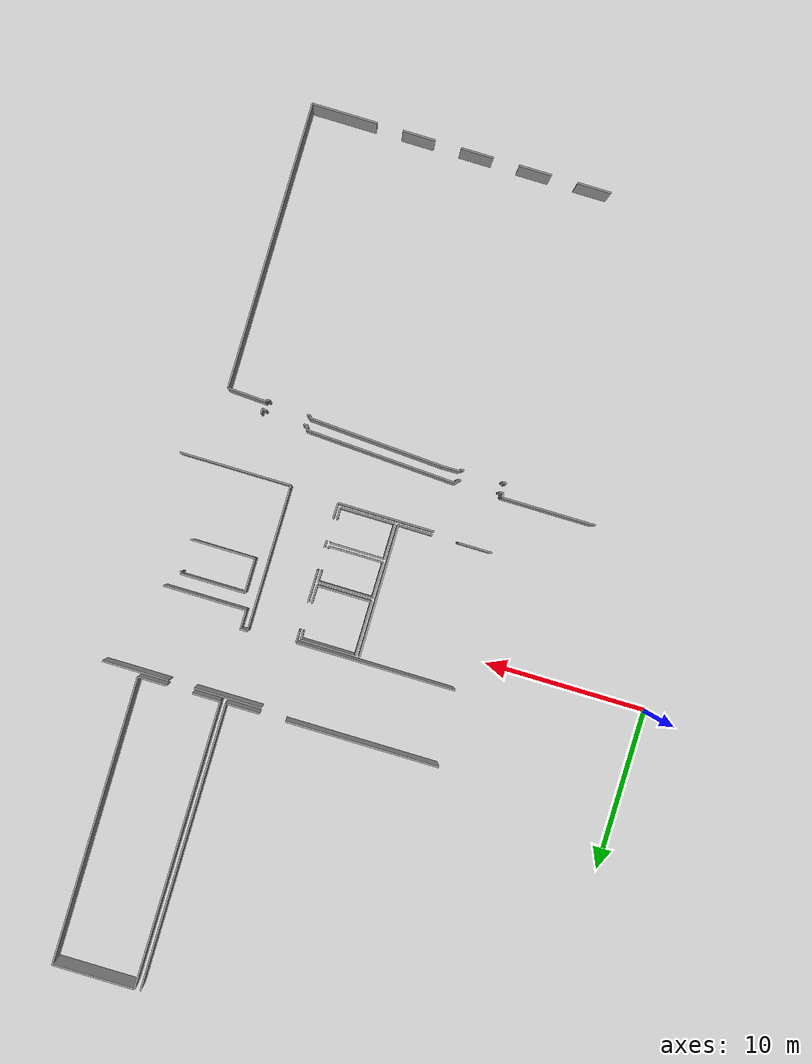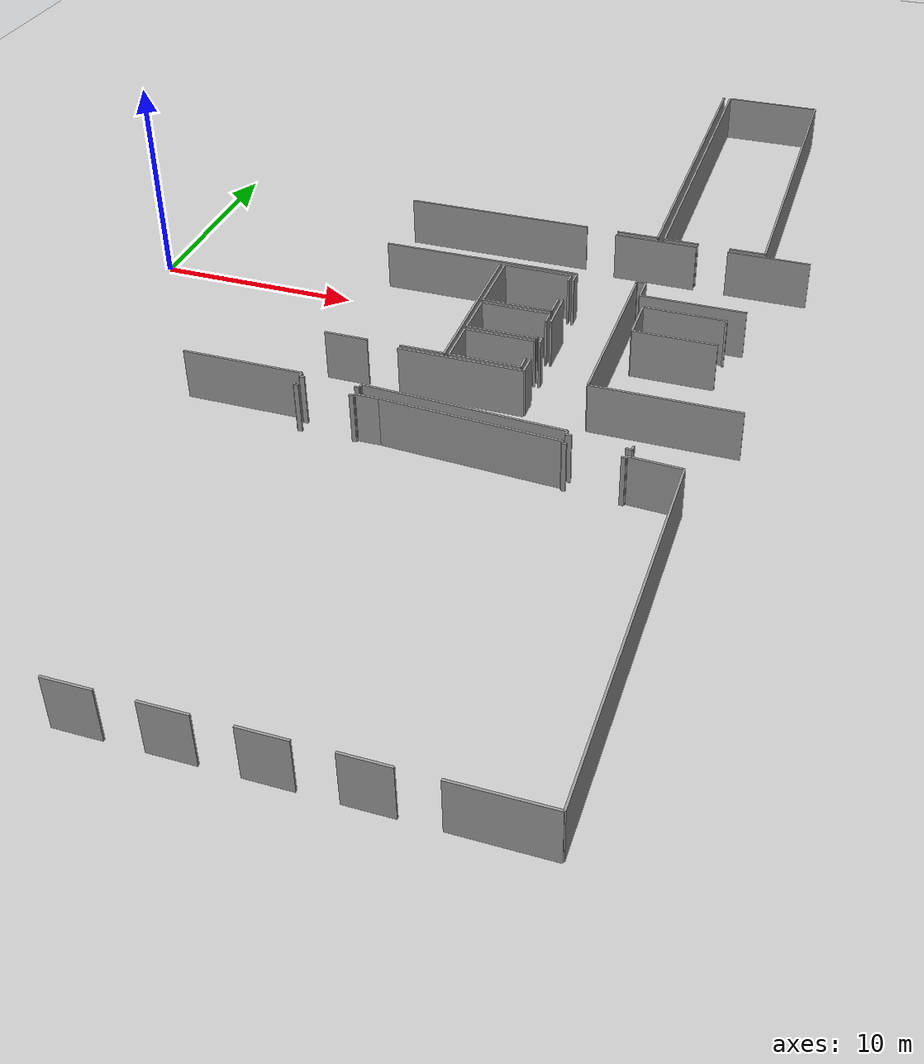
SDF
<sdf version="1.6">
 <world name="default">
  <model name="ground_plane">
   <static>1</static>
   <link name="link">
    <collision name="collision">
     <geometry><plane><normal>0 0 1</normal><size>100 100</size></plane></geometry>
     <surface><friction><ode><mu>100</mu><mu2>50</mu2></ode></friction></surface>
    </collision>
    <visual name="visual">
     <cast_shadows>0</cast_shadows>
     <geometry><plane><normal>0 0 1</normal><size>100 100</size></plane></geometry>
     <material>
      <script><uri>file://media/materials/scripts/gazebo.material</uri><name>Gazebo/Grey</name></script>
     </material>
    </visual>
   </link>
  </model>
  <model name="50041169">
   <static>1</static>
   <link name="Wall_89">
    <collision name="Wall_89_Collision">
     <geometry><box><size>0.268746905666 0.1 2.5</size></box></geometry>
     <pose>0.134373452833 0 1.25 0 0 0</pose>
    </collision>
    <visual name="Wall_89_Visual">
     <pose>0.134373452833 0 1.25 0 0 0</pose>
     <geometry><box><size>0.268746905666 0.1 2.5</size></box></geometry>
     <material>
      <script><uri>file://media/materials/scripts/gazebo.material</uri><name>Gazebo/Grey</name></script>
      <ambient>1 1 1 1</ambient>
     </material>
    </visual>
    <pose>98.7027280921 -39.3847511203 0 0 0 -1.57079632679</pose>
   </link>
   <link name="Wall_90">
    <collision name="Wall_90_Collision">
     <geometry><box><size>0.279869305316 0.1 2.5</size></box></geometry>
     <pose>0.139934652658 0 1.25 0 0 0</pose>
    </collision>
    <visual name="Wall_90_Visual">
     <pose>0.139934652658 0 1.25 0 0 0</pose>
     <geometry><box><size>0.279869305316 0.1 2.5</size></box></geometry>
     <material>
      <script><uri>file://media/materials/scripts/gazebo.material</uri><name>Gazebo/Grey</name></script>
      <ambient>1 1 1 1</ambient>
     </material>
    </visual>
    <pose>98.7027280921 -39.653498026 0 0 0 3.03889999876</pose>
   </link>
   <link name="Wall_91">
    <collision name="Wall_91_Collision">
     <geometry><box><size>0.269009516376 0.1 2.5</size></box></geometry>
     <pose>0.134504758188 0 1.25 0 0 0</pose>
    </collision>
    <visual name="Wall_91_Visual">
     <pose>0.134504758188 0 1.25 0 0 0</pose>
     <geometry><box><size>0.269009516376 0.1 2.5</size></box></geometry>
     <material>
      <script><uri>file://media/materials/scripts/gazebo.material</uri><name>Gazebo/Grey</name></script>
      <ambient>1 1 1 1</ambient>
     </material>
    </visual>
    <pose>96.0934584185 -39.467012809 0 0 0 3.08776945173</pose>
   </link>
   <link name="Wall_92">
    <collision name="Wall_92_Collision">
     <geometry><box><size>0.239658346643 0.1 2.5</size></box></geometry>
     <pose>0.119829173322 0 1.25 0 0 0</pose>
    </collision>
    <visual name="Wall_92_Visual">
     <pose>0.119829173322 0 1.25 0 0 0</pose>
     <geometry><box><size>0.239658346643 0.1 2.5</size></box></geometry>
     <material>
      <script><uri>file://media/materials/scripts/gazebo.material</uri><name>Gazebo/Grey</name></script>
      <ambient>1 1 1 1</ambient>
     </material>
    </visual>
    <pose>95.8248384599 -39.4525408452 0 0 0 1.5405988318</pose>
   </link>
   <link name="Wall_93">
    <collision name="Wall_93_Collision">
     <geometry><box><size>9.42995511775 0.1 2.5</size></box></geometry>
     <pose>4.71497755888 0 1.25 0 0 0</pose>
    </collision>
    <visual name="Wall_93_Visual">
     <pose>4.71497755888 0 1.25 0 0 0</pose>
     <geometry><box><size>9.42995511775 0.1 2.5</size></box></geometry>
     <material>
      <script><uri>file://media/materials/scripts/gazebo.material</uri><name>Gazebo/Grey</name></script>
      <ambient>1 1 1 1</ambient>
     </material>
    </visual>
    <pose>95.8320744418 -39.2129917611 0 0 0 3.08751594798</pose>
   </link>
   <link name="Wall_94">
    <collision name="Wall_94_Collision">
     <geometry><box><size>0.239929925228 0.1 2.5</size></box></geometry>
     <pose>0.119964962614 0 1.25 0 0 0</pose>
    </collision>
    <visual name="Wall_94_Visual">
     <pose>0.119964962614 0 1.25 0 0 0</pose>
     <geometry><box><size>0.239929925228 0.1 2.5</size></box></geometry>
     <material>
      <script><uri>file://media/materials/scripts/gazebo.material</uri><name>Gazebo/Grey</name></script>
      <ambient>1 1 1 1</ambient>
     </material>
    </visual>
    <pose>86.4159039265 -38.7032993538 0 0 0 -1.57079632679</pose>
   </link>
   <link name="Wall_95">
    <collision name="Wall_95_Collision">
     <geometry><box><size>0.22076092062 0.1 2.5</size></box></geometry>
     <pose>0.11038046031 0 1.25 0 0 0</pose>
    </collision>
    <visual name="Wall_95_Visual">
     <pose>0.11038046031 0 1.25 0 0 0</pose>
     <geometry><box><size>0.22076092062 0.1 2.5</size></box></geometry>
     <material>
      <script><uri>file://media/materials/scripts/gazebo.material</uri><name>Gazebo/Grey</name></script>
      <ambient>1 1 1 1</ambient>
     </material>
    </visual>
    <pose>86.4159039265 -38.9432292791 0 0 0 3.14159265359</pose>
   </link>
   <link name="Wall_96">
    <collision name="Wall_96_Collision">
     <geometry><box><size>0.233709519759 0.1 2.5</size></box></geometry>
     <pose>0.11685475988 0 1.25 0 0 0</pose>
    </collision>
    <visual name="Wall_96_Visual">
     <pose>0.11685475988 0 1.25 0 0 0</pose>
     <geometry><box><size>0.233709519759 0.1 2.5</size></box></geometry>
     <material>
      <script><uri>file://media/materials/scripts/gazebo.material</uri><name>Gazebo/Grey</name></script>
      <ambient>1 1 1 1</ambient>
     </material>
    </visual>
    <pose>83.8288499867 -38.9432292791 0 0 0 3.14159265359</pose>
   </link>
   <link name="Wall_97">
    <collision name="Wall_97_Collision">
     <geometry><box><size>0.266334911708 0.1 2.5</size></box></geometry>
     <pose>0.133167455854 0 1.25 0 0 0</pose>
    </collision>
    <visual name="Wall_97_Visual">
     <pose>0.133167455854 0 1.25 0 0 0</pose>
     <geometry><box><size>0.266334911708 0.1 2.5</size></box></geometry>
     <material>
      <script><uri>file://media/materials/scripts/gazebo.material</uri><name>Gazebo/Grey</name></script>
      <ambient>1 1 1 1</ambient>
     </material>
    </visual>
    <pose>83.5951404669 -38.9432292791 0 0 0 1.57079632679</pose>
   </link>
   <link name="Wall_98">
    <collision name="Wall_98_Collision">
     <geometry><box><size>5.78446929786 0.1 2.5</size></box></geometry>
     <pose>2.89223464893 0 1.25 0 0 0</pose>
    </collision>
    <visual name="Wall_98_Visual">
     <pose>2.89223464893 0 1.25 0 0 0</pose>
     <geometry><box><size>5.78446929786 0.1 2.5</size></box></geometry>
     <material>
      <script><uri>file://media/materials/scripts/gazebo.material</uri><name>Gazebo/Grey</name></script>
      <ambient>1 1 1 1</ambient>
     </material>
    </visual>
    <pose>83.5951404669 -38.6768943674 0 0 0 3.14159265359</pose>
   </link>
   <link name="Wall_137">
    <collision name="Wall_137_Collision">
     <geometry><box><size>5.92690388839 0.1 2.5</size></box></geometry>
     <pose>2.96345194419 0 1.25 0 0 0</pose>
    </collision>
    <visual name="Wall_137_Visual">
     <pose>2.96345194419 0 1.25 0 0 0</pose>
     <geometry><box><size>5.92690388839 0.1 2.5</size></box></geometry>
     <material>
      <script><uri>file://media/materials/scripts/gazebo.material</uri><name>Gazebo/Grey</name></script>
      <ambient>1 1 1 1</ambient>
     </material>
    </visual>
    <pose>86.8767217194 -35.5910654666 0 0 0 0.0</pose>
   </link>
   <link name="Wall_138">
    <collision name="Wall_138_Collision">
     <geometry><box><size>0.194863722341 0.1 2.5</size></box></geometry>
     <pose>0.0974318611707 0 1.25 0 0 0</pose>
    </collision>
    <visual name="Wall_138_Visual">
     <pose>0.0974318611707 0 1.25 0 0 0</pose>
     <geometry><box><size>0.194863722341 0.1 2.5</size></box></geometry>
     <material>
      <script><uri>file://media/materials/scripts/gazebo.material</uri><name>Gazebo/Grey</name></script>
      <ambient>1 1 1 1</ambient>
     </material>
    </visual>
    <pose>95.7778680512 -35.5910654666 0 0 0 -1.57079632679</pose>
   </link>
   <link name="Wall_139">
    <collision name="Wall_139_Collision">
     <geometry><box><size>6.85526766786 0.1 2.5</size></box></geometry>
     <pose>3.42763383393 0 1.25 0 0 0</pose>
    </collision>
    <visual name="Wall_139_Visual">
     <pose>3.42763383393 0 1.25 0 0 0</pose>
     <geometry><box><size>6.85526766786 0.1 2.5</size></box></geometry>
     <material>
      <script><uri>file://media/materials/scripts/gazebo.material</uri><name>Gazebo/Grey</name></script>
      <ambient>1 1 1 1</ambient>
     </material>
    </visual>
    <pose>95.7778680512 -35.7859291889 0 0 0 0.0</pose>
   </link>
   <link name="Wall_209">
    <collision name="Wall_209_Collision">
     <geometry><box><size>0.461071686999 0.1 2.5</size></box></geometry>
     <pose>0.2305358435 0 1.25 0 0 0</pose>
    </collision>
    <visual name="Wall_209_Visual">
     <pose>0.2305358435 0 1.25 0 0 0</pose>
     <geometry><box><size>0.461071686999 0.1 2.5</size></box></geometry>
     <material>
      <script><uri>file://media/materials/scripts/gazebo.material</uri><name>Gazebo/Grey</name></script>
      <ambient>1 1 1 1</ambient>
     </material>
    </visual>
    <pose>96.233354068 -26.7824635345 0 0 0 3.14159265359</pose>
   </link>
   <link name="Wall_210">
    <collision name="Wall_210_Collision">
     <geometry><box><size>0.156779607226 0.1 2.5</size></box></geometry>
     <pose>0.0783898036129 0 1.25 0 0 0</pose>
    </collision>
    <visual name="Wall_210_Visual">
     <pose>0.0783898036129 0 1.25 0 0 0</pose>
     <geometry><box><size>0.156779607226 0.1 2.5</size></box></geometry>
     <material>
      <script><uri>file://media/materials/scripts/gazebo.material</uri><name>Gazebo/Grey</name></script>
      <ambient>1 1 1 1</ambient>
     </material>
    </visual>
    <pose>95.772282381 -26.7824635345 0 0 0 -1.57079632679</pose>
   </link>
   <link name="Wall_211">
    <collision name="Wall_211_Collision">
     <geometry><box><size>9.83077958184 0.1 2.5</size></box></geometry>
     <pose>4.91538979092 0 1.25 0 0 0</pose>
    </collision>
    <visual name="Wall_211_Visual">
     <pose>4.91538979092 0 1.25 0 0 0</pose>
     <geometry><box><size>9.83077958184 0.1 2.5</size></box></geometry>
     <material>
      <script><uri>file://media/materials/scripts/gazebo.material</uri><name>Gazebo/Grey</name></script>
      <ambient>1 1 1 1</ambient>
     </material>
    </visual>
    <pose>92.8250796593 -26.9392431417 0 0 0 3.14159265359</pose>
   </link>
   <link name="Wall_232">
    <collision name="Wall_232_Collision">
     <geometry><box><size>4.14850265954 0.1 2.5</size></box></geometry>
     <pose>2.07425132977 0 1.25 0 0 0</pose>
    </collision>
    <visual name="Wall_232_Visual">
     <pose>2.07425132977 0 1.25 0 0 0</pose>
     <geometry><box><size>4.14850265954 0.1 2.5</size></box></geometry>
     <material>
      <script><uri>file://media/materials/scripts/gazebo.material</uri><name>Gazebo/Grey</name></script>
      <ambient>1 1 1 1</ambient>
     </material>
    </visual>
    <pose>93.6781638379 -22.6427202214 0 0 0 0.0</pose>
   </link>
   <link name="Wall_233">
    <collision name="Wall_233_Collision">
     <geometry><box><size>4.10089751565 0.1 2.5</size></box></geometry>
     <pose>2.05044875782 0 1.25 0 0 0</pose>
    </collision>
    <visual name="Wall_233_Visual">
     <pose>2.05044875782 0 1.25 0 0 0</pose>
     <geometry><box><size>4.10089751565 0.1 2.5</size></box></geometry>
     <material>
      <script><uri>file://media/materials/scripts/gazebo.material</uri><name>Gazebo/Grey</name></script>
      <ambient>1 1 1 1</ambient>
     </material>
    </visual>
    <pose>99.410457898 -22.6427202214 0 0 0 0.0</pose>
   </link>
   <link name="Wall_262">
    <collision name="Wall_262_Collision">
     <geometry><box><size>2.08891371409 0.1 2.5</size></box></geometry>
     <pose>1.04445685704 0 1.25 0 0 0</pose>
    </collision>
    <visual name="Wall_262_Visual">
     <pose>1.04445685704 0 1.25 0 0 0</pose>
     <geometry><box><size>2.08891371409 0.1 2.5</size></box></geometry>
     <material>
      <script><uri>file://media/materials/scripts/gazebo.material</uri><name>Gazebo/Grey</name></script>
      <ambient>1 1 1 1</ambient>
     </material>
    </visual>
    <pose>95.7816764627 -22.3085955848 0 0 0 3.14159265359</pose>
   </link>
   <link name="Wall_263">
    <collision name="Wall_263_Collision">
     <geometry><box><size>9.48764170464 0.1 2.5</size></box></geometry>
     <pose>4.74382085232 0 1.25 0 0 0</pose>
    </collision>
    <visual name="Wall_263_Visual">
     <pose>4.74382085232 0 1.25 0 0 0</pose>
     <geometry><box><size>9.48764170464 0.1 2.5</size></box></geometry>
     <material>
      <script><uri>file://media/materials/scripts/gazebo.material</uri><name>Gazebo/Grey</name></script>
      <ambient>1 1 1 1</ambient>
     </material>
    </visual>
    <pose>92.0985616899 -22.3085955848 0 0 0 3.14159265359</pose>
   </link>
   <link name="Wall_271">
    <collision name="Wall_271_Collision">
     <geometry><box><size>17.7374382687 0.1 2.5</size></box></geometry>
     <pose>8.86871913437 0 1.25 0 0 0</pose>
    </collision>
    <visual name="Wall_271_Visual">
     <pose>8.86871913437 0 1.25 0 0 0</pose>
     <geometry><box><size>17.7374382687 0.1 2.5</size></box></geometry>
     <material>
      <script><uri>file://media/materials/scripts/gazebo.material</uri><name>Gazebo/Grey</name></script>
      <ambient>1 1 1 1</ambient>
     </material>
    </visual>
    <pose>95.7581912584 -4.5711728638 0 0 0 -1.56947227927</pose>
   </link>
   <link name="Wall_272">
    <collision name="Wall_272_Collision">
     <geometry><box><size>1.78525636957 0.1 2.5</size></box></geometry>
     <pose>0.892628184784 0 1.25 0 0 0</pose>
    </collision>
    <visual name="Wall_272_Visual">
     <pose>0.892628184784 0 1.25 0 0 0</pose>
     <geometry><box><size>1.78525636957 0.1 2.5</size></box></geometry>
     <material>
      <script><uri>file://media/materials/scripts/gazebo.material</uri><name>Gazebo/Grey</name></script>
      <ambient>1 1 1 1</ambient>
     </material>
    </visual>
    <pose>101.231259442 -22.329287954 0 0 0 3.14159265359</pose>
   </link>
   <link name="Wall_273">
    <collision name="Wall_273_Collision">
     <geometry><box><size>1.72749546164 0.1 2.5</size></box></geometry>
     <pose>0.863747730821 0 1.25 0 0 0</pose>
    </collision>
    <visual name="Wall_273_Visual">
     <pose>0.863747730821 0 1.25 0 0 0</pose>
     <geometry><box><size>1.72749546164 0.1 2.5</size></box></geometry>
     <material>
      <script><uri>file://media/materials/scripts/gazebo.material</uri><name>Gazebo/Grey</name></script>
      <ambient>1 1 1 1</ambient>
     </material>
    </visual>
    <pose>97.8571337895 -22.329287954 0 0 0 3.14159265359</pose>
   </link>
   <link name="Wall_274">
    <collision name="Wall_274_Collision">
     <geometry><box><size>17.7663666485 0.1 2.5</size></box></geometry>
     <pose>8.88318332424 0 1.25 0 0 0</pose>
    </collision>
    <visual name="Wall_274_Visual">
     <pose>8.88318332424 0 1.25 0 0 0</pose>
     <geometry><box><size>17.7663666485 0.1 2.5</size></box></geometry>
     <material>
      <script><uri>file://media/materials/scripts/gazebo.material</uri><name>Gazebo/Grey</name></script>
      <ambient>1 1 1 1</ambient>
     </material>
    </visual>
    <pose>96.1296383279 -22.329287954 0 0 0 1.57079632679</pose>
   </link>
   <link name="Wall_275">
    <collision name="Wall_275_Collision">
     <geometry><box><size>5.06924961599 0.1 2.5</size></box></geometry>
     <pose>2.53462480799 0 1.25 0 0 0</pose>
    </collision>
    <visual name="Wall_275_Visual">
     <pose>2.53462480799 0 1.25 0 0 0</pose>
     <geometry><box><size>5.06924961599 0.1 2.5</size></box></geometry>
     <material>
      <script><uri>file://media/materials/scripts/gazebo.material</uri><name>Gazebo/Grey</name></script>
      <ambient>1 1 1 1</ambient>
     </material>
    </visual>
    <pose>96.1296383279 -4.56292130552 0 0 0 0.0</pose>
   </link>
   <link name="Wall_276">
    <collision name="Wall_276_Collision">
     <geometry><box><size>17.76639614 0.1 2.5</size></box></geometry>
     <pose>8.88319806998 0 1.25 0 0 0</pose>
    </collision>
    <visual name="Wall_276_Visual">
     <pose>8.88319806998 0 1.25 0 0 0</pose>
     <geometry><box><size>17.76639614 0.1 2.5</size></box></geometry>
     <material>
      <script><uri>file://media/materials/scripts/gazebo.material</uri><name>Gazebo/Grey</name></script>
      <ambient>1 1 1 1</ambient>
     </material>
    </visual>
    <pose>101.198887944 -4.56292130552 0 0 0 -1.56897426252</pose>
   </link>
   <link name="Wall_282">
    <collision name="Wall_282_Collision">
     <geometry><box><size>2.11734985338 0.1 2.5</size></box></geometry>
     <pose>1.05867492669 0 1.25 0 0 0</pose>
    </collision>
    <visual name="Wall_282_Visual">
     <pose>1.05867492669 0 1.25 0 0 0</pose>
     <geometry><box><size>2.11734985338 0.1 2.5</size></box></geometry>
     <material>
      <script><uri>file://media/materials/scripts/gazebo.material</uri><name>Gazebo/Grey</name></script>
      <ambient>1 1 1 1</ambient>
     </material>
    </visual>
    <pose>89.0113363716 -35.3616721465 0 0 0 3.14159265359</pose>
   </link>
   <link name="Wall_283">
    <collision name="Wall_283_Collision">
     <geometry><box><size>2.08193162632 0.1 2.5</size></box></geometry>
     <pose>1.04096581316 0 1.25 0 0 0</pose>
    </collision>
    <visual name="Wall_283_Visual">
     <pose>1.04096581316 0 1.25 0 0 0</pose>
     <geometry><box><size>2.08193162632 0.1 2.5</size></box></geometry>
     <material>
      <script><uri>file://media/materials/scripts/gazebo.material</uri><name>Gazebo/Grey</name></script>
      <ambient>1 1 1 1</ambient>
     </material>
    </visual>
    <pose>85.3120993234 -35.3616721465 0 0 0 3.14159265359</pose>
   </link>
   <link name="Wall_286">
    <collision name="Wall_286_Collision">
     <geometry><box><size>8.16184235021 0.1 2.5</size></box></geometry>
     <pose>4.08092117511 0 1.25 0 0 0</pose>
    </collision>
    <visual name="Wall_286_Visual">
     <pose>4.08092117511 0 1.25 0 0 0</pose>
     <geometry><box><size>8.16184235021 0.1 2.5</size></box></geometry>
     <material>
      <script><uri>file://media/materials/scripts/gazebo.material</uri><name>Gazebo/Grey</name></script>
      <ambient>1 1 1 1</ambient>
     </material>
    </visual>
    <pose>88.987216432 -27.1998654361 0 0 0 -1.56784111477</pose>
   </link>
   <link name="Wall_287">
    <collision name="Wall_287_Collision">
     <geometry><box><size>8.61564241555 0.1 2.5</size></box></geometry>
     <pose>4.30782120777 0 1.25 0 0 0</pose>
    </collision>
    <visual name="Wall_287_Visual">
     <pose>4.30782120777 0 1.25 0 0 0</pose>
     <geometry><box><size>8.61564241555 0.1 2.5</size></box></geometry>
     <material>
      <script><uri>file://media/materials/scripts/gazebo.material</uri><name>Gazebo/Grey</name></script>
      <ambient>1 1 1 1</ambient>
     </material>
    </visual>
    <pose>95.7802800452 -35.5792593909 0 0 0 1.57079632679</pose>
   </link>
   <link name="Wall_288">
    <collision name="Wall_288_Collision">
     <geometry><box><size>0.729564698564 0.1 2.5</size></box></geometry>
     <pose>0.364782349282 0 1.25 0 0 0</pose>
    </collision>
    <visual name="Wall_288_Visual">
     <pose>0.364782349282 0 1.25 0 0 0</pose>
     <geometry><box><size>0.729564698564 0.1 2.5</size></box></geometry>
     <material>
      <script><uri>file://media/materials/scripts/gazebo.material</uri><name>Gazebo/Grey</name></script>
      <ambient>1 1 1 1</ambient>
     </material>
    </visual>
    <pose>92.8281263885 -26.9636169754 0 0 0 -1.57079632679</pose>
   </link>
   <link name="Wall_289">
    <collision name="Wall_289_Collision">
     <geometry><box><size>2.02328208904 0.1 2.5</size></box></geometry>
     <pose>1.01164104452 0 1.25 0 0 0</pose>
    </collision>
    <visual name="Wall_289_Visual">
     <pose>1.01164104452 0 1.25 0 0 0</pose>
     <geometry><box><size>2.02328208904 0.1 2.5</size></box></geometry>
     <material>
      <script><uri>file://media/materials/scripts/gazebo.material</uri><name>Gazebo/Grey</name></script>
      <ambient>1 1 1 1</ambient>
     </material>
    </visual>
    <pose>92.8281263885 -29.4451779163 0 0 0 -1.57079632679</pose>
   </link>
   <link name="Wall_290">
    <collision name="Wall_290_Collision">
     <geometry><box><size>0.42819240095 0.1 2.5</size></box></geometry>
     <pose>0.214096200475 0 1.25 0 0 0</pose>
    </collision>
    <visual name="Wall_290_Visual">
     <pose>0.214096200475 0 1.25 0 0 0</pose>
     <geometry><box><size>0.42819240095 0.1 2.5</size></box></geometry>
     <material>
      <script><uri>file://media/materials/scripts/gazebo.material</uri><name>Gazebo/Grey</name></script>
      <ambient>1 1 1 1</ambient>
     </material>
    </visual>
    <pose>92.8281263885 -32.8402498318 0 0 0 -1.57079632679</pose>
   </link>
   <link name="Wall_291">
    <collision name="Wall_291_Collision">
     <geometry><box><size>0.953655587564 0.1 2.5</size></box></geometry>
     <pose>0.476827793782 0 1.25 0 0 0</pose>
    </collision>
    <visual name="Wall_291_Visual">
     <pose>0.476827793782 0 1.25 0 0 0</pose>
     <geometry><box><size>0.953655587564 0.1 2.5</size></box></geometry>
     <material>
      <script><uri>file://media/materials/scripts/gazebo.material</uri><name>Gazebo/Grey</name></script>
      <ambient>1 1 1 1</ambient>
     </material>
    </visual>
    <pose>92.8281263885 -34.6257600955 0 0 0 -1.58890112511</pose>
   </link>
   <link name="Wall_292">
    <collision name="Wall_292_Collision">
     <geometry><box><size>3.35546443578 0.1 2.5</size></box></geometry>
     <pose>1.67773221789 0 1.25 0 0 0</pose>
    </collision>
    <visual name="Wall_292_Visual">
     <pose>1.67773221789 0 1.25 0 0 0</pose>
     <geometry><box><size>3.35546443578 0.1 2.5</size></box></geometry>
     <material>
      <script><uri>file://media/materials/scripts/gazebo.material</uri><name>Gazebo/Grey</name></script>
      <ambient>1 1 1 1</ambient>
     </material>
    </visual>
    <pose>92.5931473982 -30.5469513666 0 0 0 3.14159265359</pose>
   </link>
   <link name="Wall_293">
    <collision name="Wall_293_Collision">
     <geometry><box><size>3.35267160068 0.1 2.5</size></box></geometry>
     <pose>1.67633580034 0 1.25 0 0 0</pose>
    </collision>
    <visual name="Wall_293_Visual">
     <pose>1.67633580034 0 1.25 0 0 0</pose>
     <geometry><box><size>3.35267160068 0.1 2.5</size></box></geometry>
     <material>
      <script><uri>file://media/materials/scripts/gazebo.material</uri><name>Gazebo/Grey</name></script>
      <ambient>1 1 1 1</ambient>
     </material>
    </visual>
    <pose>89.2376829624 -30.5469513666 0 0 0 1.57079632679</pose>
   </link>
   <link name="Wall_294">
    <collision name="Wall_294_Collision">
     <geometry><box><size>3.36320820586 0.1 2.5</size></box></geometry>
     <pose>1.68160410293 0 1.25 0 0 0</pose>
    </collision>
    <visual name="Wall_294_Visual">
     <pose>1.68160410293 0 1.25 0 0 0</pose>
     <geometry><box><size>3.36320820586 0.1 2.5</size></box></geometry>
     <material>
      <script><uri>file://media/materials/scripts/gazebo.material</uri><name>Gazebo/Grey</name></script>
      <ambient>1 1 1 1</ambient>
     </material>
    </visual>
    <pose>89.2376829624 -27.1942797659 0 0 0 0.0</pose>
   </link>
   <link name="Wall_295">
    <collision name="Wall_295_Collision">
     <geometry><box><size>0.498648013913 0.1 2.5</size></box></geometry>
     <pose>0.249324006957 0 1.25 0 0 0</pose>
    </collision>
    <visual name="Wall_295_Visual">
     <pose>0.249324006957 0 1.25 0 0 0</pose>
     <geometry><box><size>0.498648013913 0.1 2.5</size></box></geometry>
     <material>
      <script><uri>file://media/materials/scripts/gazebo.material</uri><name>Gazebo/Grey</name></script>
      <ambient>1 1 1 1</ambient>
     </material>
    </visual>
    <pose>92.6008911683 -27.1942797659 0 0 0 -1.57079632679</pose>
   </link>
   <link name="Wall_296">
    <collision name="Wall_296_Collision">
     <geometry><box><size>1.10675147658 0.1 2.5</size></box></geometry>
     <pose>0.553375738288 0 1.25 0 0 0</pose>
    </collision>
    <visual name="Wall_296_Visual">
     <pose>0.553375738288 0 1.25 0 0 0</pose>
     <geometry><box><size>1.10675147658 0.1 2.5</size></box></geometry>
     <material>
      <script><uri>file://media/materials/scripts/gazebo.material</uri><name>Gazebo/Grey</name></script>
      <ambient>1 1 1 1</ambient>
     </material>
    </visual>
    <pose>92.6008911683 -29.4402269813 0 0 0 -1.57779323028</pose>
   </link>
   <link name="Wall_297">
    <collision name="Wall_297_Collision">
     <geometry><box><size>3.3605423178 0.1 2.5</size></box></geometry>
     <pose>1.6802711589 0 1.25 0 0 0</pose>
    </collision>
    <visual name="Wall_297_Visual">
     <pose>1.6802711589 0 1.25 0 0 0</pose>
     <geometry><box><size>3.3605423178 0.1 2.5</size></box></geometry>
     <material>
      <script><uri>file://media/materials/scripts/gazebo.material</uri><name>Gazebo/Grey</name></script>
      <ambient>1 1 1 1</ambient>
     </material>
    </visual>
    <pose>92.6021606388 -32.9708783466 0 0 0 3.14159265359</pose>
   </link>
   <link name="Wall_298">
    <collision name="Wall_298_Collision">
     <geometry><box><size>2.18475873713 0.1 2.5</size></box></geometry>
     <pose>1.09237936857 0 1.25 0 0 0</pose>
    </collision>
    <visual name="Wall_298_Visual">
     <pose>1.09237936857 0 1.25 0 0 0</pose>
     <geometry><box><size>2.18475873713 0.1 2.5</size></box></geometry>
     <material>
      <script><uri>file://media/materials/scripts/gazebo.material</uri><name>Gazebo/Grey</name></script>
      <ambient>1 1 1 1</ambient>
     </material>
    </visual>
    <pose>89.241618321 -32.9708783466 0 0 0 1.57079632679</pose>
   </link>
   <link name="Wall_299">
    <collision name="Wall_299_Collision">
     <geometry><box><size>3.35330633593 0.1 2.5</size></box></geometry>
     <pose>1.67665316796 0 1.25 0 0 0</pose>
    </collision>
    <visual name="Wall_299_Visual">
     <pose>1.67665316796 0 1.25 0 0 0</pose>
     <geometry><box><size>3.35330633593 0.1 2.5</size></box></geometry>
     <material>
      <script><uri>file://media/materials/scripts/gazebo.material</uri><name>Gazebo/Grey</name></script>
      <ambient>1 1 1 1</ambient>
     </material>
    </visual>
    <pose>89.241618321 -30.7861196095 0 0 0 0.0</pose>
   </link>
   <link name="Wall_300">
    <collision name="Wall_300_Collision">
     <geometry><box><size>0.704048341437 0.1 2.5</size></box></geometry>
     <pose>0.352024170718 0 1.25 0 0 0</pose>
    </collision>
    <visual name="Wall_300_Visual">
     <pose>0.352024170718 0 1.25 0 0 0</pose>
     <geometry><box><size>0.704048341437 0.1 2.5</size></box></geometry>
     <material>
      <script><uri>file://media/materials/scripts/gazebo.material</uri><name>Gazebo/Grey</name></script>
      <ambient>1 1 1 1</ambient>
     </material>
    </visual>
    <pose>92.5949246569 -30.7861196095 0 0 0 -1.57079632679</pose>
   </link>
   <link name="Wall_301">
    <collision name="Wall_301_Collision">
     <geometry><box><size>0.137040090576 0.1 2.5</size></box></geometry>
     <pose>0.0685200452881 0 1.25 0 0 0</pose>
    </collision>
    <visual name="Wall_301_Visual">
     <pose>0.0685200452881 0 1.25 0 0 0</pose>
     <geometry><box><size>0.137040090576 0.1 2.5</size></box></geometry>
     <material>
      <script><uri>file://media/materials/scripts/gazebo.material</uri><name>Gazebo/Grey</name></script>
      <ambient>1 1 1 1</ambient>
     </material>
    </visual>
    <pose>92.5949246569 -32.8340294263 0 0 0 -1.51796982588</pose>
   </link>
   <link name="Wall_302">
    <collision name="Wall_302_Collision">
     <geometry><box><size>3.36523935866 0.1 2.5</size></box></geometry>
     <pose>1.68261967933 0 1.25 0 0 0</pose>
    </collision>
    <visual name="Wall_302_Visual">
     <pose>1.68261967933 0 1.25 0 0 0</pose>
     <geometry><box><size>3.36523935866 0.1 2.5</size></box></geometry>
     <material>
      <script><uri>file://media/materials/scripts/gazebo.material</uri><name>Gazebo/Grey</name></script>
      <ambient>1 1 1 1</ambient>
     </material>
    </visual>
    <pose>92.6021606388 -35.3588793114 0 0 0 3.14159265359</pose>
   </link>
   <link name="Wall_303">
    <collision name="Wall_303_Collision">
     <geometry><box><size>2.16228910921 0.1 2.5</size></box></geometry>
     <pose>1.08114455461 0 1.25 0 0 0</pose>
    </collision>
    <visual name="Wall_303_Visual">
     <pose>1.08114455461 0 1.25 0 0 0</pose>
     <geometry><box><size>2.16228910921 0.1 2.5</size></box></geometry>
     <material>
      <script><uri>file://media/materials/scripts/gazebo.material</uri><name>Gazebo/Grey</name></script>
      <ambient>1 1 1 1</ambient>
     </material>
    </visual>
    <pose>89.2369212801 -35.3588793114 0 0 0 1.57079632679</pose>
   </link>
   <link name="Wall_304">
    <collision name="Wall_304_Collision">
     <geometry><box><size>3.35140213017 0.1 2.5</size></box></geometry>
     <pose>1.67570106509 0 1.25 0 0 0</pose>
    </collision>
    <visual name="Wall_304_Visual">
     <pose>1.67570106509 0 1.25 0 0 0</pose>
     <geometry><box><size>3.35140213017 0.1 2.5</size></box></geometry>
     <material>
      <script><uri>file://media/materials/scripts/gazebo.material</uri><name>Gazebo/Grey</name></script>
      <ambient>1 1 1 1</ambient>
     </material>
    </visual>
    <pose>89.2369212801 -33.1965902022 0 0 0 0.0</pose>
   </link>
   <link name="Wall_305">
    <collision name="Wall_305_Collision">
     <geometry><box><size>0.0756604420296 0.1 2.5</size></box></geometry>
     <pose>0.0378302210148 0 1.25 0 0 0</pose>
    </collision>
    <visual name="Wall_305_Visual">
     <pose>0.0378302210148 0 1.25 0 0 0</pose>
     <geometry><box><size>0.0756604420296 0.1 2.5</size></box></geometry>
     <material>
      <script><uri>file://media/materials/scripts/gazebo.material</uri><name>Gazebo/Grey</name></script>
      <ambient>1 1 1 1</ambient>
     </material>
    </visual>
    <pose>92.5883234103 -33.1965902022 0 0 0 -1.57079632679</pose>
   </link>
   <link name="Wall_306">
    <collision name="Wall_306_Collision">
     <geometry><box><size>0.721953545389 0.1 2.5</size></box></geometry>
     <pose>0.360976772694 0 1.25 0 0 0</pose>
    </collision>
    <visual name="Wall_306_Visual">
     <pose>0.360976772694 0 1.25 0 0 0</pose>
     <geometry><box><size>0.721953545389 0.1 2.5</size></box></geometry>
     <material>
      <script><uri>file://media/materials/scripts/gazebo.material</uri><name>Gazebo/Grey</name></script>
      <ambient>1 1 1 1</ambient>
     </material>
    </visual>
    <pose>92.5883234103 -34.6370583829 0 0 0 -1.55162878353</pose>
   </link>
   <link name="Wall_307">
    <collision name="Wall_307_Collision">
     <geometry><box><size>5.11622002463 0.1 2.5</size></box></geometry>
     <pose>2.55811001231 0 1.25 0 0 0</pose>
    </collision>
    <visual name="Wall_307_Visual">
     <pose>2.55811001231 0 1.25 0 0 0</pose>
     <geometry><box><size>5.11622002463 0.1 2.5</size></box></geometry>
     <material>
      <script><uri>file://media/materials/scripts/gazebo.material</uri><name>Gazebo/Grey</name></script>
      <ambient>1 1 1 1</ambient>
     </material>
    </visual>
    <pose>101.323169106 -27.9524075508 0 0 0 3.14159265359</pose>
   </link>
   <link name="Wall_308">
    <collision name="Wall_308_Collision">
     <geometry><box><size>1.1710865398 0.1 2.5</size></box></geometry>
     <pose>0.585543269902 0 1.25 0 0 0</pose>
    </collision>
    <visual name="Wall_308_Visual">
     <pose>0.585543269902 0 1.25 0 0 0</pose>
     <geometry><box><size>1.1710865398 0.1 2.5</size></box></geometry>
     <material>
      <script><uri>file://media/materials/scripts/gazebo.material</uri><name>Gazebo/Grey</name></script>
      <ambient>1 1 1 1</ambient>
     </material>
    </visual>
    <pose>96.2069490815 -27.9524075508 0 0 0 1.57079632679</pose>
   </link>
   <link name="Wall_317">
    <collision name="Wall_317_Collision">
     <geometry><box><size>3.97801277087 0.1 2.5</size></box></geometry>
     <pose>1.98900638544 0 1.25 0 0 0</pose>
    </collision>
    <visual name="Wall_317_Visual">
     <pose>1.98900638544 0 1.25 0 0 0</pose>
     <geometry><box><size>3.97801277087 0.1 2.5</size></box></geometry>
     <material>
      <script><uri>file://media/materials/scripts/gazebo.material</uri><name>Gazebo/Grey</name></script>
      <ambient>1 1 1 1</ambient>
     </material>
    </visual>
    <pose>100.557170604 -31.0336663578 0 0 0 3.14159265359</pose>
   </link>
   <link name="Wall_318">
    <collision name="Wall_318_Collision">
     <geometry><box><size>2.12458583525 0.1 2.5</size></box></geometry>
     <pose>1.06229291762 0 1.25 0 0 0</pose>
    </collision>
    <visual name="Wall_318_Visual">
     <pose>1.06229291762 0 1.25 0 0 0</pose>
     <geometry><box><size>2.12458583525 0.1 2.5</size></box></geometry>
     <material>
      <script><uri>file://media/materials/scripts/gazebo.material</uri><name>Gazebo/Grey</name></script>
      <ambient>1 1 1 1</ambient>
     </material>
    </visual>
    <pose>96.5791578333 -31.0336663578 0 0 0 1.57079632679</pose>
   </link>
   <link name="Wall_319">
    <collision name="Wall_319_Collision">
     <geometry><box><size>3.9692534244 0.1 2.5</size></box></geometry>
     <pose>1.9846267122 0 1.25 0 0 0</pose>
    </collision>
    <visual name="Wall_319_Visual">
     <pose>1.9846267122 0 1.25 0 0 0</pose>
     <geometry><box><size>3.9692534244 0.1 2.5</size></box></geometry>
     <material>
      <script><uri>file://media/materials/scripts/gazebo.material</uri><name>Gazebo/Grey</name></script>
      <ambient>1 1 1 1</ambient>
     </material>
    </visual>
    <pose>96.5791578333 -28.9090805225 0 0 0 0.0</pose>
   </link>
   <link name="Wall_320">
    <collision name="Wall_320_Collision">
     <geometry><box><size>0.178829152328 0.1 2.5</size></box></geometry>
     <pose>0.0894145761641 0 1.25 0 0 0</pose>
    </collision>
    <visual name="Wall_320_Visual">
     <pose>0.0894145761641 0 1.25 0 0 0</pose>
     <geometry><box><size>0.178829152328 0.1 2.5</size></box></geometry>
     <material>
      <script><uri>file://media/materials/scripts/gazebo.material</uri><name>Gazebo/Grey</name></script>
      <ambient>1 1 1 1</ambient>
     </material>
    </visual>
    <pose>100.548411258 -28.9090805225 0 0 0 -1.52179507212</pose>
   </link>
   <link name="Wall_326">
    <collision name="Wall_326_Collision">
     <geometry><box><size>4.01952445635 0.1 2.5</size></box></geometry>
     <pose>2.00976222817 0 1.25 0 0 0</pose>
    </collision>
    <visual name="Wall_326_Visual">
     <pose>2.00976222817 0 1.25 0 0 0</pose>
     <geometry><box><size>4.01952445635 0.1 2.5</size></box></geometry>
     <material>
      <script><uri>file://media/materials/scripts/gazebo.material</uri><name>Gazebo/Grey</name></script>
      <ambient>1 1 1 1</ambient>
     </material>
    </visual>
    <pose>101.028144161 -57.7982938316 0 0 0 3.14159265359</pose>
   </link>
   <link name="Wall_327">
    <collision name="Wall_327_Collision">
     <geometry><box><size>2.01426884846 0.1 2.5</size></box></geometry>
     <pose>1.00713442423 0 1.25 0 0 0</pose>
    </collision>
    <visual name="Wall_327_Visual">
     <pose>1.00713442423 0 1.25 0 0 0</pose>
     <geometry><box><size>2.01426884846 0.1 2.5</size></box></geometry>
     <material>
      <script><uri>file://media/materials/scripts/gazebo.material</uri><name>Gazebo/Grey</name></script>
      <ambient>1 1 1 1</ambient>
     </material>
    </visual>
    <pose>95.4266055628 -57.7982938316 0 0 0 3.14159265359</pose>
   </link>
   <link name="Wall_328">
    <collision name="Wall_328_Collision">
     <geometry><box><size>2.01414190141 0.1 2.5</size></box></geometry>
     <pose>1.00707095071 0 1.25 0 0 0</pose>
    </collision>
    <visual name="Wall_328_Visual">
     <pose>1.00707095071 0 1.25 0 0 0</pose>
     <geometry><box><size>2.01414190141 0.1 2.5</size></box></geometry>
     <material>
      <script><uri>file://media/materials/scripts/gazebo.material</uri><name>Gazebo/Grey</name></script>
      <ambient>1 1 1 1</ambient>
     </material>
    </visual>
    <pose>91.83171899 -57.7982938316 0 0 0 3.14159265359</pose>
   </link>
   <link name="Wall_329">
    <collision name="Wall_329_Collision">
     <geometry><box><size>2.0088101253 0.1 2.5</size></box></geometry>
     <pose>1.00440506265 0 1.25 0 0 0</pose>
    </collision>
    <visual name="Wall_329_Visual">
     <pose>1.00440506265 0 1.25 0 0 0</pose>
     <geometry><box><size>2.0088101253 0.1 2.5</size></box></geometry>
     <material>
      <script><uri>file://media/materials/scripts/gazebo.material</uri><name>Gazebo/Grey</name></script>
      <ambient>1 1 1 1</ambient>
     </material>
    </visual>
    <pose>88.2315006411 -57.7982938316 0 0 0 3.14159265359</pose>
   </link>
   <link name="Wall_330">
    <collision name="Wall_330_Collision">
     <geometry><box><size>2.06910997423 0.1 2.5</size></box></geometry>
     <pose>1.03455498711 0 1.25 0 0 0</pose>
    </collision>
    <visual name="Wall_330_Visual">
     <pose>1.03455498711 0 1.25 0 0 0</pose>
     <geometry><box><size>2.06910997423 0.1 2.5</size></box></geometry>
     <material>
      <script><uri>file://media/materials/scripts/gazebo.material</uri><name>Gazebo/Grey</name></script>
      <ambient>1 1 1 1</ambient>
     </material>
    </visual>
    <pose>84.6256966219 -57.7982938316 0 0 0 3.14159265359</pose>
   </link>
   <link name="Wall_333">
    <collision name="Wall_333_Collision">
     <geometry><box><size>0.120472750816 0.1 2.5</size></box></geometry>
     <pose>0.0602363754078 0 1.25 0 0 0</pose>
    </collision>
    <visual name="Wall_333_Visual">
     <pose>0.0602363754078 0 1.25 0 0 0</pose>
     <geometry><box><size>0.120472750816 0.1 2.5</size></box></geometry>
     <material>
      <script><uri>file://media/materials/scripts/gazebo.material</uri><name>Gazebo/Grey</name></script>
      <ambient>1 1 1 1</ambient>
     </material>
    </visual>
    <pose>83.6072004367 -39.4451779163 0 0 0 -1.57079632679</pose>
   </link>
   <link name="Wall_334">
    <collision name="Wall_334_Collision">
     <geometry><box><size>0.214794409252 0.1 2.5</size></box></geometry>
     <pose>0.107397204626 0 1.25 0 0 0</pose>
    </collision>
    <visual name="Wall_334_Visual">
     <pose>0.107397204626 0 1.25 0 0 0</pose>
     <geometry><box><size>0.214794409252 0.1 2.5</size></box></geometry>
     <material>
      <script><uri>file://media/materials/scripts/gazebo.material</uri><name>Gazebo/Grey</name></script>
      <ambient>1 1 1 1</ambient>
     </material>
    </visual>
    <pose>83.6072004367 -39.5656506671 0 0 0 0.0</pose>
   </link>
   <link name="Wall_335">
    <collision name="Wall_335_Collision">
     <geometry><box><size>0.208700950833 0.1 2.5</size></box></geometry>
     <pose>0.104350475417 0 1.25 0 0 0</pose>
    </collision>
    <visual name="Wall_335_Visual">
     <pose>0.104350475417 0 1.25 0 0 0</pose>
     <geometry><box><size>0.208700950833 0.1 2.5</size></box></geometry>
     <material>
      <script><uri>file://media/materials/scripts/gazebo.material</uri><name>Gazebo/Grey</name></script>
      <ambient>1 1 1 1</ambient>
     </material>
    </visual>
    <pose>86.1909537532 -39.5656506671 0 0 0 0.0</pose>
   </link>
   <link name="Wall_336">
    <collision name="Wall_336_Collision">
     <geometry><box><size>0.112475086641 0.1 2.5</size></box></geometry>
     <pose>0.0562375433207 0 1.25 0 0 0</pose>
    </collision>
    <visual name="Wall_336_Visual">
     <pose>0.0562375433207 0 1.25 0 0 0</pose>
     <geometry><box><size>0.112475086641 0.1 2.5</size></box></geometry>
     <material>
      <script><uri>file://media/materials/scripts/gazebo.material</uri><name>Gazebo/Grey</name></script>
      <ambient>1 1 1 1</ambient>
     </material>
    </visual>
    <pose>86.399654704 -39.5656506671 0 0 0 1.57079632679</pose>
   </link>
   <link name="Wall_337">
    <collision name="Wall_337_Collision">
     <geometry><box><size>1.10789763771 0.1 2.5</size></box></geometry>
     <pose>0.553948818853 0 1.25 0 0 0</pose>
    </collision>
    <visual name="Wall_337_Visual">
     <pose>0.553948818853 0 1.25 0 0 0</pose>
     <geometry><box><size>1.10789763771 0.1 2.5</size></box></geometry>
     <material>
      <script><uri>file://media/materials/scripts/gazebo.material</uri><name>Gazebo/Grey</name></script>
      <ambient>1 1 1 1</ambient>
     </material>
    </visual>
    <pose>86.399654704 -39.4531755805 0 0 0 0.0074480116974</pose>
   </link>
   <link name="Wall_338">
    <collision name="Wall_338_Collision">
     <geometry><box><size>8.35548214429 0.1 2.5</size></box></geometry>
     <pose>4.17774107214 0 1.25 0 0 0</pose>
    </collision>
    <visual name="Wall_338_Visual">
     <pose>4.17774107214 0 1.25 0 0 0</pose>
     <geometry><box><size>8.35548214429 0.1 2.5</size></box></geometry>
     <material>
      <script><uri>file://media/materials/scripts/gazebo.material</uri><name>Gazebo/Grey</name></script>
      <ambient>1 1 1 1</ambient>
     </material>
    </visual>
    <pose>87.5075216127 -39.4449240222 0 0 0 -0.0590297217374</pose>
   </link>
   <link name="Wall_339">
    <collision name="Wall_339_Collision">
     <geometry><box><size>0.133675244056 0.1 2.5</size></box></geometry>
     <pose>0.0668376220279 0 1.25 0 0 0</pose>
    </collision>
    <visual name="Wall_339_Visual">
     <pose>0.0668376220279 0 1.25 0 0 0</pose>
     <geometry><box><size>0.133675244056 0.1 2.5</size></box></geometry>
     <material>
      <script><uri>file://media/materials/scripts/gazebo.material</uri><name>Gazebo/Grey</name></script>
      <ambient>1 1 1 1</ambient>
     </material>
    </visual>
    <pose>95.8484506113 -39.9378594188 0 0 0 -1.57079632679</pose>
   </link>
   <link name="Wall_340">
    <collision name="Wall_340_Collision">
     <geometry><box><size>0.196150652423 0.1 2.5</size></box></geometry>
     <pose>0.0980753262115 0 1.25 0 0 0</pose>
    </collision>
    <visual name="Wall_340_Visual">
     <pose>0.0980753262115 0 1.25 0 0 0</pose>
     <geometry><box><size>0.196150652423 0.1 2.5</size></box></geometry>
     <material>
      <script><uri>file://media/materials/scripts/gazebo.material</uri><name>Gazebo/Grey</name></script>
      <ambient>1 1 1 1</ambient>
     </material>
    </visual>
    <pose>95.8484506113 -40.0715346629 0 0 0 -0.0731979960323</pose>
   </link>
   <link name="Wall_341">
    <collision name="Wall_341_Collision">
     <geometry><box><size>0.196688672606 0.1 2.5</size></box></geometry>
     <pose>0.0983443363029 0 1.25 0 0 0</pose>
    </collision>
    <visual name="Wall_341_Visual">
     <pose>0.0983443363029 0 1.25 0 0 0</pose>
     <geometry><box><size>0.196688672606 0.1 2.5</size></box></geometry>
     <material>
      <script><uri>file://media/materials/scripts/gazebo.material</uri><name>Gazebo/Grey</name></script>
      <ambient>1 1 1 1</ambient>
     </material>
    </visual>
    <pose>98.3920886598 -40.2289490054 0 0 0 -0.0976135529503</pose>
   </link>
   <link name="Wall_342">
    <collision name="Wall_342_Collision">
     <geometry><box><size>0.124154215277 0.1 2.5</size></box></geometry>
     <pose>0.0620771076384 0 1.25 0 0 0</pose>
    </collision>
    <visual name="Wall_342_Visual">
     <pose>0.0620771076384 0 1.25 0 0 0</pose>
     <geometry><box><size>0.124154215277 0.1 2.5</size></box></geometry>
     <material>
      <script><uri>file://media/materials/scripts/gazebo.material</uri><name>Gazebo/Grey</name></script>
      <ambient>1 1 1 1</ambient>
     </material>
    </visual>
    <pose>98.5878410115 -40.24811801 0 0 0 1.57079632679</pose>
   </link>
   <link name="Wall_343">
    <collision name="Wall_343_Collision">
     <geometry><box><size>2.41822205331 0.1 2.5</size></box></geometry>
     <pose>1.20911102665 0 1.25 0 0 0</pose>
    </collision>
    <visual name="Wall_343_Visual">
     <pose>1.20911102665 0 1.25 0 0 0</pose>
     <geometry><box><size>2.41822205331 0.1 2.5</size></box></geometry>
     <material>
      <script><uri>file://media/materials/scripts/gazebo.material</uri><name>Gazebo/Grey</name></script>
      <ambient>1 1 1 1</ambient>
     </material>
    </visual>
    <pose>98.5878410115 -40.1239637947 0 0 0 -0.0533087128453</pose>
   </link>
   <link name="Wall_344">
    <collision name="Wall_344_Collision">
     <geometry><box><size>17.545497335 0.1 2.5</size></box></geometry>
     <pose>8.77274866749 0 1.25 0 0 0</pose>
    </collision>
    <visual name="Wall_344_Visual">
     <pose>8.77274866749 0 1.25 0 0 0</pose>
     <geometry><box><size>17.545497335 0.1 2.5</size></box></geometry>
     <material>
      <script><uri>file://media/materials/scripts/gazebo.material</uri><name>Gazebo/Grey</name></script>
      <ambient>1 1 1 1</ambient>
     </material>
    </visual>
    <pose>101.002627804 -40.2528150508 0 0 0 -1.56934202968</pose>
   </link>
   <pose>-71.5 28.8982938316 0 0 0 0</pose>
  </model>
 </world>
</sdf>
